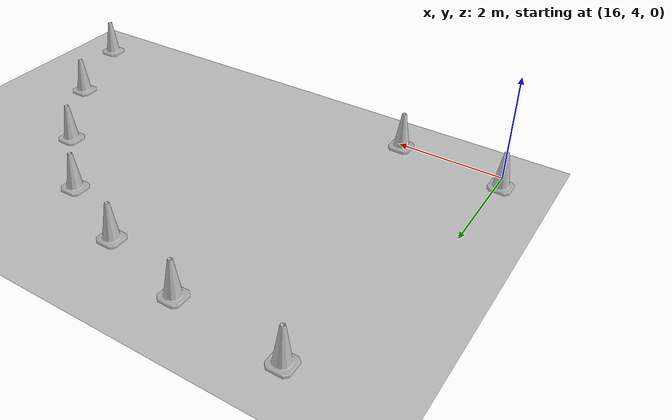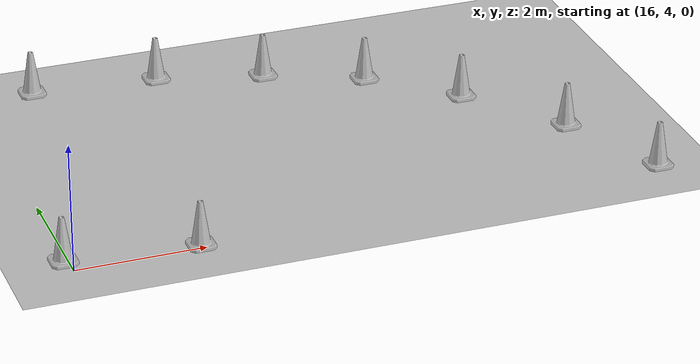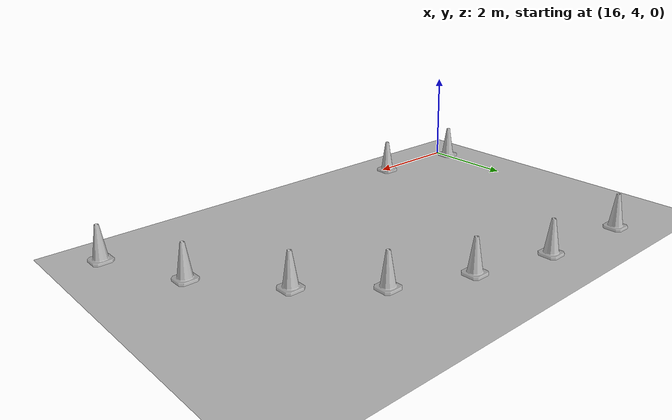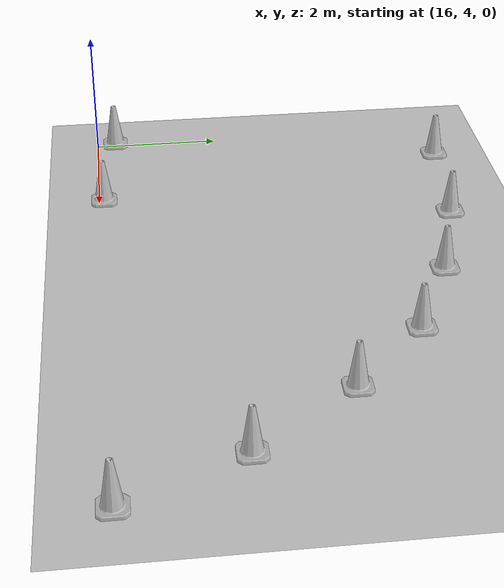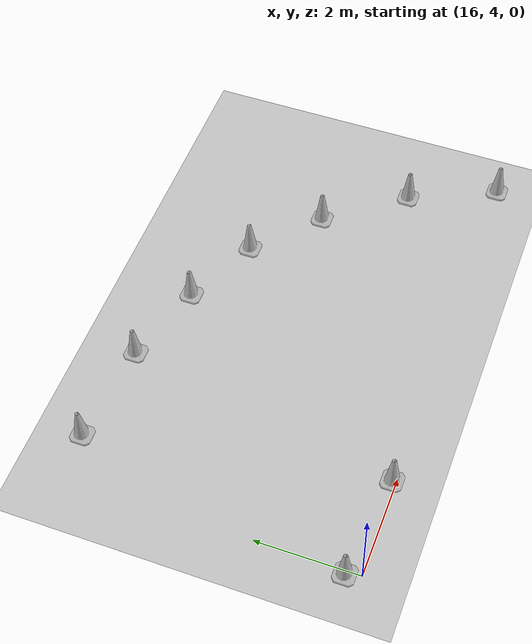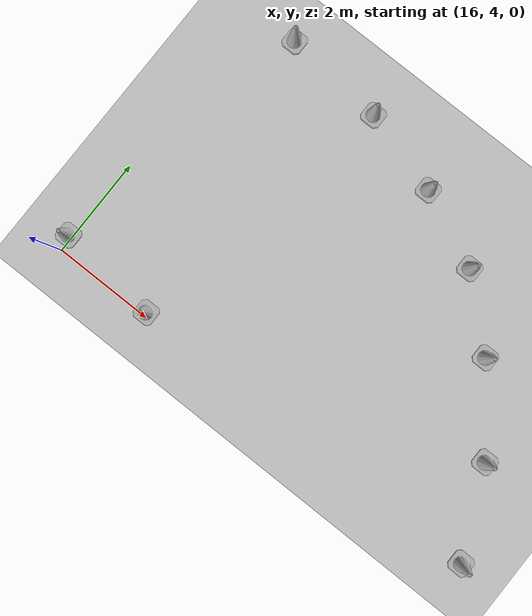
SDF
<sdf version="1.7">
 <world name="default">
  <model name="Construction_Cone_b_15">
   <link name="link">
    <inertial>
     <inertia><ixx>1</ixx><ixy>0</ixy><ixz>0</ixz><iyy>1</iyy><iyz>0</iyz><izz>1</izz></inertia>
     <mass>1</mass>
    </inertial>
    <visual name="visual">
     <geometry>
      <mesh><scale>8 8 6.7</scale><uri>./construction_cone/meshes/construction_cone_b.dae</uri></mesh>
     </geometry>
     <material><shader type="pixel"/></material>
    </visual>
    <collision name="collision">
     <geometry>
      <mesh><uri>./construction_cone/meshes/construction_cone_b.dae</uri><scale>8 8 6.7</scale></mesh>
     </geometry>
     <surface>
      <friction>
       <ode><mu>1</mu><mu2>1</mu2><fdir1>0 0 0</fdir1><slip1>0</slip1><slip2>0</slip2></ode>
       <torsional>
        <coefficient>1</coefficient>
        <patch_radius>0</patch_radius>
        <surface_radius>0</surface_radius>
        <use_patch_radius>1</use_patch_radius>
        <ode><slip>0</slip></ode>
       </torsional>
      </friction>
      <bounce><restitution_coefficient>0</restitution_coefficient><threshold>1e+06</threshold></bounce>
      <contact>
       <collide_without_contact>0</collide_without_contact>
       <collide_without_contact_bitmask>1</collide_without_contact_bitmask>
       <collide_bitmask>1</collide_bitmask>
       <ode>
        <soft_cfm>0</soft_cfm>
        <soft_erp>0.2</soft_erp>
        <kp>1e+13</kp>
        <kd>1</kd>
        <max_vel>0.01</max_vel>
        <min_depth>0</min_depth>
       </ode>
       <bullet>
        <split_impulse>1</split_impulse>
        <split_impulse_penetration_threshold>-0.01</split_impulse_penetration_threshold>
        <soft_cfm>0</soft_cfm>
        <soft_erp>0.2</soft_erp>
        <kp>1e+13</kp>
        <kd>1</kd>
       </bullet>
      </contact>
     </surface>
    </collision>
   </link>
   <static>0</static>
   <pose>15.9301 4.29807 -0 0 -0 0</pose>
  </model>
  <model name="Construction_Cone_b_17">
   <link name="link">
    <inertial>
     <inertia><ixx>1</ixx><ixy>0</ixy><ixz>0</ixz><iyy>1</iyy><iyz>0</iyz><izz>1</izz></inertia>
     <mass>1</mass>
    </inertial>
    <visual name="visual">
     <geometry>
      <mesh><scale>8 8 6.7</scale><uri>./construction_cone/meshes/construction_cone_b.dae</uri></mesh>
     </geometry>
     <material><shader type="pixel"/></material>
    </visual>
    <collision name="collision">
     <geometry>
      <mesh><uri>./construction_cone/meshes/construction_cone_b.dae</uri><scale>8 8 6.7</scale></mesh>
     </geometry>
     <surface>
      <friction>
       <ode><mu>1</mu><mu2>1</mu2><fdir1>0 0 0</fdir1><slip1>0</slip1><slip2>0</slip2></ode>
       <torsional>
        <coefficient>1</coefficient>
        <patch_radius>0</patch_radius>
        <surface_radius>0</surface_radius>
        <use_patch_radius>1</use_patch_radius>
        <ode><slip>0</slip></ode>
       </torsional>
      </friction>
      <bounce><restitution_coefficient>0</restitution_coefficient><threshold>1e+06</threshold></bounce>
      <contact>
       <collide_without_contact>0</collide_without_contact>
       <collide_without_contact_bitmask>1</collide_without_contact_bitmask>
       <collide_bitmask>1</collide_bitmask>
       <ode>
        <soft_cfm>0</soft_cfm>
        <soft_erp>0.2</soft_erp>
        <kp>1e+13</kp>
        <kd>1</kd>
        <max_vel>0.01</max_vel>
        <min_depth>0</min_depth>
       </ode>
       <bullet>
        <split_impulse>1</split_impulse>
        <split_impulse_penetration_threshold>-0.01</split_impulse_penetration_threshold>
        <soft_cfm>0</soft_cfm>
        <soft_erp>0.2</soft_erp>
        <kp>1e+13</kp>
        <kd>1</kd>
       </bullet>
      </contact>
     </surface>
    </collision>
   </link>
   <static>0</static>
   <pose>17.934 4.08187 -0 -0 -0 -0</pose>
  </model>
  <model name="Construction_Cone_y_21">
   <link name="link">
    <inertial>
     <pose>0 0 0.1 0 -0 0</pose>
     <inertia><ixx>1</ixx><ixy>0</ixy><ixz>0</ixz><iyy>1</iyy><iyz>0</iyz><izz>1</izz></inertia>
     <mass>1</mass>
    </inertial>
    <pose>0 0 0.1 0 -0 0</pose>
    <visual name="visual">
     <geometry>
      <mesh><scale>8 8 6.7</scale><uri>./construction_cone/meshes/construction_cone_y.dae</uri></mesh>
     </geometry>
     <material><shader type="pixel"/></material>
     <pose>0 0 0.1 0 -0 0</pose>
    </visual>
    <collision name="collision">
     <pose>0 0 0.1 0 -0 0</pose>
     <geometry>
      <mesh><uri>./construction_cone/meshes/construction_cone_y.dae</uri><scale>8 8 6.7</scale></mesh>
     </geometry>
     <surface>
      <friction>
       <ode><mu>1</mu><mu2>1</mu2><fdir1>0 0 0</fdir1><slip1>0</slip1><slip2>0</slip2></ode>
       <torsional>
        <coefficient>1</coefficient>
        <patch_radius>0</patch_radius>
        <surface_radius>0</surface_radius>
        <use_patch_radius>1</use_patch_radius>
        <ode><slip>0</slip></ode>
       </torsional>
      </friction>
      <bounce><restitution_coefficient>0</restitution_coefficient><threshold>1e+06</threshold></bounce>
      <contact>
       <collide_without_contact>0</collide_without_contact>
       <collide_without_contact_bitmask>1</collide_without_contact_bitmask>
       <collide_bitmask>1</collide_bitmask>
       <ode>
        <soft_cfm>0</soft_cfm>
        <soft_erp>0.2</soft_erp>
        <kp>1e+13</kp>
        <kd>1</kd>
        <max_vel>0.01</max_vel>
        <min_depth>0</min_depth>
       </ode>
       <bullet>
        <split_impulse>1</split_impulse>
        <split_impulse_penetration_threshold>-0.01</split_impulse_penetration_threshold>
        <soft_cfm>0</soft_cfm>
        <soft_erp>0.2</soft_erp>
        <kp>1e+13</kp>
        <kd>1</kd>
       </bullet>
      </contact>
     </surface>
    </collision>
   </link>
   <static>0</static>
   <pose>16.93 9.70299 -0.2 -0 -0 -0</pose>
  </model>
  <model name="Construction_Cone_y_23">
   <link name="link">
    <inertial>
     <pose>0 0 0.1 0 -0 0</pose>
     <inertia><ixx>1</ixx><ixy>0</ixy><ixz>0</ixz><iyy>1</iyy><iyz>0</iyz><izz>1</izz></inertia>
     <mass>1</mass>
    </inertial>
    <pose>0 0 0.1 0 -0 0</pose>
    <visual name="visual">
     <geometry>
      <mesh><scale>8 8 6.7</scale><uri>./construction_cone/meshes/construction_cone_y.dae</uri></mesh>
     </geometry>
     <material><shader type="pixel"/></material>
     <pose>0 0 0.1 0 -0 0</pose>
    </visual>
    <collision name="collision">
     <pose>0 0 0.1 0 -0 0</pose>
     <geometry>
      <mesh><uri>./construction_cone/meshes/construction_cone_y.dae</uri><scale>8 8 6.7</scale></mesh>
     </geometry>
     <surface>
      <friction>
       <ode><mu>1</mu><mu2>1</mu2><fdir1>0 0 0</fdir1><slip1>0</slip1><slip2>0</slip2></ode>
       <torsional>
        <coefficient>1</coefficient>
        <patch_radius>0</patch_radius>
        <surface_radius>0</surface_radius>
        <use_patch_radius>1</use_patch_radius>
        <ode><slip>0</slip></ode>
       </torsional>
      </friction>
      <bounce><restitution_coefficient>0</restitution_coefficient><threshold>1e+06</threshold></bounce>
      <contact>
       <collide_without_contact>0</collide_without_contact>
       <collide_without_contact_bitmask>1</collide_without_contact_bitmask>
       <collide_bitmask>1</collide_bitmask>
       <ode>
        <soft_cfm>0</soft_cfm>
        <soft_erp>0.2</soft_erp>
        <kp>1e+13</kp>
        <kd>1</kd>
        <max_vel>0.01</max_vel>
        <min_depth>0</min_depth>
       </ode>
       <bullet>
        <split_impulse>1</split_impulse>
        <split_impulse_penetration_threshold>-0.01</split_impulse_penetration_threshold>
        <soft_cfm>0</soft_cfm>
        <soft_erp>0.2</soft_erp>
        <kp>1e+13</kp>
        <kd>1</kd>
       </bullet>
      </contact>
     </surface>
    </collision>
   </link>
   <static>0</static>
   <pose>18.9281 9.52545 -0.2 -0 -0 -0</pose>
  </model>
  <model name="Construction_Cone_y_26">
   <link name="link">
    <inertial>
     <pose>0 0 0.1 0 -0 0</pose>
     <inertia><ixx>1</ixx><ixy>0</ixy><ixz>0</ixz><iyy>1</iyy><iyz>0</iyz><izz>1</izz></inertia>
     <mass>1</mass>
    </inertial>
    <pose>0 0 0.1 0 -0 0</pose>
    <visual name="visual">
     <geometry>
      <mesh><scale>8 8 6.7</scale><uri>./construction_cone/meshes/construction_cone_y.dae</uri></mesh>
     </geometry>
     <material><shader type="pixel"/></material>
     <pose>0 0 0.1 0 -0 0</pose>
    </visual>
    <collision name="collision">
     <pose>0 0 0.1 0 -0 0</pose>
     <geometry>
      <mesh><uri>./construction_cone/meshes/construction_cone_y.dae</uri><scale>8 8 6.7</scale></mesh>
     </geometry>
     <surface>
      <friction>
       <ode><mu>1</mu><mu2>1</mu2><fdir1>0 0 0</fdir1><slip1>0</slip1><slip2>0</slip2></ode>
       <torsional>
        <coefficient>1</coefficient>
        <patch_radius>0</patch_radius>
        <surface_radius>0</surface_radius>
        <use_patch_radius>1</use_patch_radius>
        <ode><slip>0</slip></ode>
       </torsional>
      </friction>
      <bounce><restitution_coefficient>0</restitution_coefficient><threshold>1e+06</threshold></bounce>
      <contact>
       <collide_without_contact>0</collide_without_contact>
       <collide_without_contact_bitmask>1</collide_without_contact_bitmask>
       <collide_bitmask>1</collide_bitmask>
       <ode>
        <soft_cfm>0</soft_cfm>
        <soft_erp>0.2</soft_erp>
        <kp>1e+13</kp>
        <kd>1</kd>
        <max_vel>0.01</max_vel>
        <min_depth>0</min_depth>
       </ode>
       <bullet>
        <split_impulse>1</split_impulse>
        <split_impulse_penetration_threshold>-0.01</split_impulse_penetration_threshold>
        <soft_cfm>0</soft_cfm>
        <soft_erp>0.2</soft_erp>
        <kp>1e+13</kp>
        <kd>1</kd>
       </bullet>
      </contact>
     </surface>
    </collision>
   </link>
   <static>0</static>
   <pose>22.0613 8.39395 -0.2 -0 -0 -0</pose>
  </model>
  <model name="Construction_Cone_y_27">
   <link name="link">
    <inertial>
     <pose>0 0 0.1 0 -0 0</pose>
     <inertia><ixx>1</ixx><ixy>0</ixy><ixz>0</ixz><iyy>1</iyy><iyz>0</iyz><izz>1</izz></inertia>
     <mass>1</mass>
    </inertial>
    <pose>0 0 0.1 0 -0 0</pose>
    <visual name="visual">
     <geometry>
      <mesh><scale>8 8 6.7</scale><uri>./construction_cone/meshes/construction_cone_y.dae</uri></mesh>
     </geometry>
     <material><shader type="pixel"/></material>
     <pose>0 0 0.1 0 -0 0</pose>
    </visual>
    <collision name="collision">
     <pose>0 0 0.1 0 -0 0</pose>
     <geometry>
      <mesh><uri>./construction_cone/meshes/construction_cone_y.dae</uri><scale>8 8 6.7</scale></mesh>
     </geometry>
     <surface>
      <friction>
       <ode><mu>1</mu><mu2>1</mu2><fdir1>0 0 0</fdir1><slip1>0</slip1><slip2>0</slip2></ode>
       <torsional>
        <coefficient>1</coefficient>
        <patch_radius>0</patch_radius>
        <surface_radius>0</surface_radius>
        <use_patch_radius>1</use_patch_radius>
        <ode><slip>0</slip></ode>
       </torsional>
      </friction>
      <bounce><restitution_coefficient>0</restitution_coefficient><threshold>1e+06</threshold></bounce>
      <contact>
       <collide_without_contact>0</collide_without_contact>
       <collide_without_contact_bitmask>1</collide_without_contact_bitmask>
       <collide_bitmask>1</collide_bitmask>
       <ode>
        <soft_cfm>0</soft_cfm>
        <soft_erp>0.2</soft_erp>
        <kp>1e+13</kp>
        <kd>1</kd>
        <max_vel>0.01</max_vel>
        <min_depth>0</min_depth>
       </ode>
       <bullet>
        <split_impulse>1</split_impulse>
        <split_impulse_penetration_threshold>-0.01</split_impulse_penetration_threshold>
        <soft_cfm>0</soft_cfm>
        <soft_erp>0.2</soft_erp>
        <kp>1e+13</kp>
        <kd>1</kd>
       </bullet>
      </contact>
     </surface>
    </collision>
   </link>
   <static>0</static>
   <pose>23.2836 7.28765 -0.2 0 -0 0</pose>
  </model>
  <model name="Construction_Cone_y_28">
   <link name="link">
    <inertial>
     <pose>0 0 0.1 0 -0 0</pose>
     <inertia><ixx>1</ixx><ixy>0</ixy><ixz>0</ixz><iyy>1</iyy><iyz>0</iyz><izz>1</izz></inertia>
     <mass>1</mass>
    </inertial>
    <pose>0 0 0.1 0 -0 0</pose>
    <visual name="visual">
     <geometry>
      <mesh><scale>8 8 6.7</scale><uri>./construction_cone/meshes/construction_cone_y.dae</uri></mesh>
     </geometry>
     <material><shader type="pixel"/></material>
     <pose>0 0 0.1 0 -0 0</pose>
    </visual>
    <collision name="collision">
     <pose>0 0 0.1 0 -0 0</pose>
     <geometry>
      <mesh><uri>./construction_cone/meshes/construction_cone_y.dae</uri><scale>8 8 6.7</scale></mesh>
     </geometry>
     <surface>
      <friction>
       <ode><mu>1</mu><mu2>1</mu2><fdir1>0 0 0</fdir1><slip1>0</slip1><slip2>0</slip2></ode>
       <torsional>
        <coefficient>1</coefficient>
        <patch_radius>0</patch_radius>
        <surface_radius>0</surface_radius>
        <use_patch_radius>1</use_patch_radius>
        <ode><slip>0</slip></ode>
       </torsional>
      </friction>
      <bounce><restitution_coefficient>0</restitution_coefficient><threshold>1e+06</threshold></bounce>
      <contact>
       <collide_without_contact>0</collide_without_contact>
       <collide_without_contact_bitmask>1</collide_without_contact_bitmask>
       <collide_bitmask>1</collide_bitmask>
       <ode>
        <soft_cfm>0</soft_cfm>
        <soft_erp>0.2</soft_erp>
        <kp>1e+13</kp>
        <kd>1</kd>
        <max_vel>0.01</max_vel>
        <min_depth>0</min_depth>
       </ode>
       <bullet>
        <split_impulse>1</split_impulse>
        <split_impulse_penetration_threshold>-0.01</split_impulse_penetration_threshold>
        <soft_cfm>0</soft_cfm>
        <soft_erp>0.2</soft_erp>
        <kp>1e+13</kp>
        <kd>1</kd>
       </bullet>
      </contact>
     </surface>
    </collision>
   </link>
   <static>0</static>
   <pose>24.435 5.79164 -0.2 -0 -0 -0</pose>
  </model>
  <model name="Construction_Cone_y_29">
   <link name="link">
    <inertial>
     <pose>0 0 0.1 0 -0 0</pose>
     <inertia><ixx>1</ixx><ixy>0</ixy><ixz>0</ixz><iyy>1</iyy><iyz>0</iyz><izz>1</izz></inertia>
     <mass>1</mass>
    </inertial>
    <pose>0 0 0.1 0 -0 0</pose>
    <visual name="visual">
     <geometry>
      <mesh><scale>8 8 6.7</scale><uri>./construction_cone/meshes/construction_cone_y.dae</uri></mesh>
     </geometry>
     <material><shader type="pixel"/></material>
     <pose>0 0 0.1 0 -0 0</pose>
    </visual>
    <collision name="collision">
     <pose>0 0 0.1 0 -0 0</pose>
     <geometry>
      <mesh><uri>./construction_cone/meshes/construction_cone_y.dae</uri><scale>8 8 6.7</scale></mesh>
     </geometry>
     <surface>
      <friction>
       <ode><mu>1</mu><mu2>1</mu2><fdir1>0 0 0</fdir1><slip1>0</slip1><slip2>0</slip2></ode>
       <torsional>
        <coefficient>1</coefficient>
        <patch_radius>0</patch_radius>
        <surface_radius>0</surface_radius>
        <use_patch_radius>1</use_patch_radius>
        <ode><slip>0</slip></ode>
       </torsional>
      </friction>
      <bounce><restitution_coefficient>0</restitution_coefficient><threshold>1e+06</threshold></bounce>
      <contact>
       <collide_without_contact>0</collide_without_contact>
       <collide_without_contact_bitmask>1</collide_without_contact_bitmask>
       <collide_bitmask>1</collide_bitmask>
       <ode>
        <soft_cfm>0</soft_cfm>
        <soft_erp>0.2</soft_erp>
        <kp>1e+13</kp>
        <kd>1</kd>
        <max_vel>0.01</max_vel>
        <min_depth>0</min_depth>
       </ode>
       <bullet>
        <split_impulse>1</split_impulse>
        <split_impulse_penetration_threshold>-0.01</split_impulse_penetration_threshold>
        <soft_cfm>0</soft_cfm>
        <soft_erp>0.2</soft_erp>
        <kp>1e+13</kp>
        <kd>1</kd>
       </bullet>
      </contact>
     </surface>
    </collision>
   </link>
   <static>0</static>
   <pose>25.2113 4.09481 -0.2 0 -1e-06 0</pose>
  </model>
  <model name="Construction_Cone_y_146">
   <link name="link">
    <inertial>
     <pose>0 0 0.1 0 -0 0</pose>
     <inertia><ixx>1</ixx><ixy>0</ixy><ixz>0</ixz><iyy>1</iyy><iyz>0</iyz><izz>1</izz></inertia>
     <mass>1</mass>
    </inertial>
    <pose>0 0 0.1 0 -0 0</pose>
    <visual name="visual">
     <geometry>
      <mesh><scale>8 8 6.7</scale><uri>./construction_cone/meshes/construction_cone_y.dae</uri></mesh>
     </geometry>
     <material><shader type="pixel"/></material>
     <pose>0 0 0.1 0 -0 0</pose>
    </visual>
    <collision name="collision">
     <pose>0 0 0.1 0 -0 0</pose>
     <geometry>
      <mesh><uri>./construction_cone/meshes/construction_cone_y.dae</uri><scale>8 8 6.7</scale></mesh>
     </geometry>
     <surface>
      <friction>
       <ode><mu>1</mu><mu2>1</mu2><fdir1>0 0 0</fdir1><slip1>0</slip1><slip2>0</slip2></ode>
       <torsional>
        <coefficient>1</coefficient>
        <patch_radius>0</patch_radius>
        <surface_radius>0</surface_radius>
        <use_patch_radius>1</use_patch_radius>
        <ode><slip>0</slip></ode>
       </torsional>
      </friction>
      <bounce><restitution_coefficient>0</restitution_coefficient><threshold>1e+06</threshold></bounce>
      <contact>
       <collide_without_contact>0</collide_without_contact>
       <collide_without_contact_bitmask>1</collide_without_contact_bitmask>
       <collide_bitmask>1</collide_bitmask>
       <ode>
        <soft_cfm>0</soft_cfm>
        <soft_erp>0.2</soft_erp>
        <kp>1e+13</kp>
        <kd>1</kd>
        <max_vel>0.01</max_vel>
        <min_depth>0</min_depth>
       </ode>
       <bullet>
        <split_impulse>1</split_impulse>
        <split_impulse_penetration_threshold>-0.01</split_impulse_penetration_threshold>
        <soft_cfm>0</soft_cfm>
        <soft_erp>0.2</soft_erp>
        <kp>1e+13</kp>
        <kd>1</kd>
       </bullet>
      </contact>
     </surface>
    </collision>
   </link>
   <static>0</static>
   <pose>20.5768 9.06072 -0.2 -0 -0 -0</pose>
  </model>
  <model name="ground_plane">
   <static>1</static>
   <link name="link">
    <collision name="collision">
     <geometry><plane><normal>0 0 1</normal><size>100 100</size></plane></geometry>
     <surface>
      <contact><collide_bitmask>65535</collide_bitmask></contact>
      <friction><ode><mu>100</mu><mu2>50</mu2></ode></friction>
     </surface>
    </collision>
    <visual name="visual">
     <cast_shadows>0</cast_shadows>
     <geometry><plane><normal>0 0 1</normal><size>100 100</size></plane></geometry>
     <material>
      <script><uri>file://media/materials/scripts/gazebo.material</uri><name>Gazebo/Grey</name></script>
     </material>
    </visual>
   </link>
   <pose>0 0 -0.001 0 -0 0</pose>
  </model>
 </world>
</sdf>
